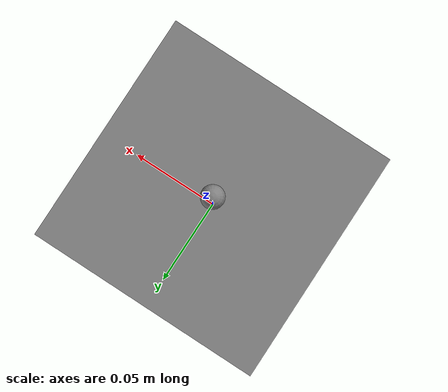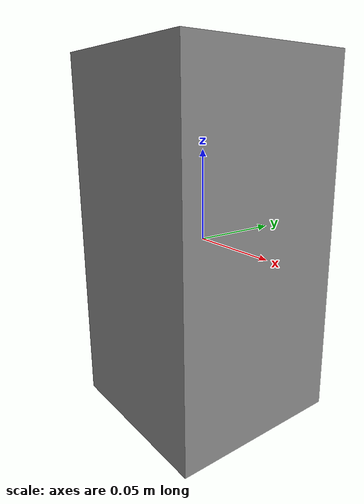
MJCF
<mujoco model="sensor-site-attachment-change">
  <option gravity="0 0 0"/>
  <worldbody>
    <body name="tool_body">
      <freejoint name="tool_free"/>
      <geom name="tool_geom" type="box" size="0.05 0.05 0.1" mass="1"/>
      <site name="sensor_frame" pos="0 0 0" size="0.005"/>
      <site name="grip_frame" pos="0 0 0.1" size="0.005"/>
    </body>
  </worldbody>
  <sensor>
    <force name="tool_force" site="sensor_frame"/>
    <torque name="tool_torque" site="sensor_frame"/>
  </sensor>
</mujoco>
